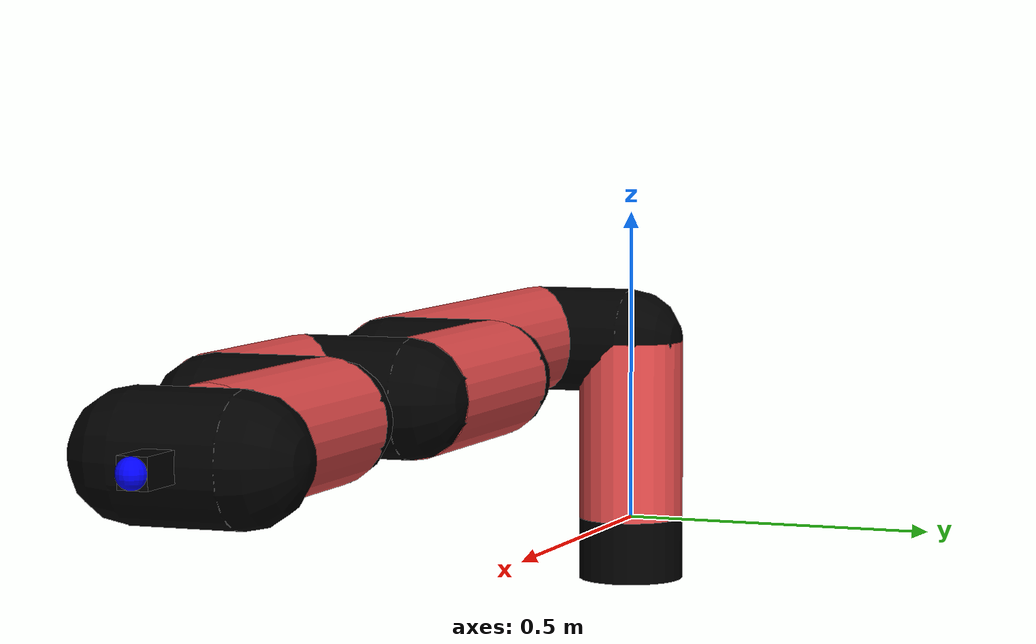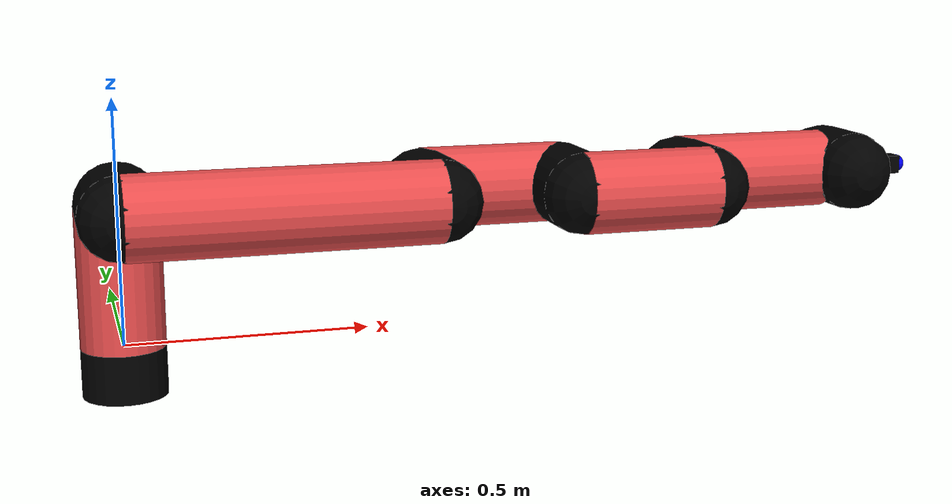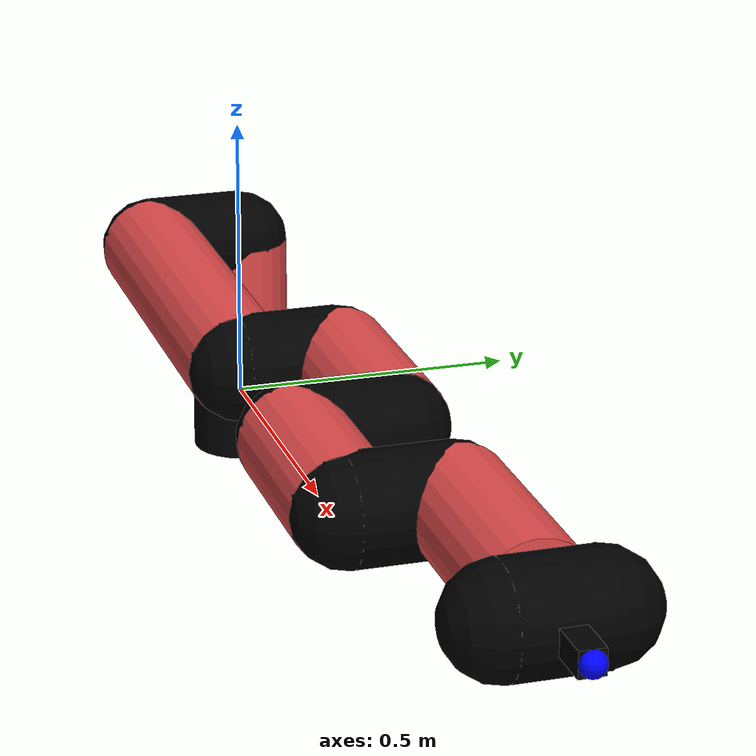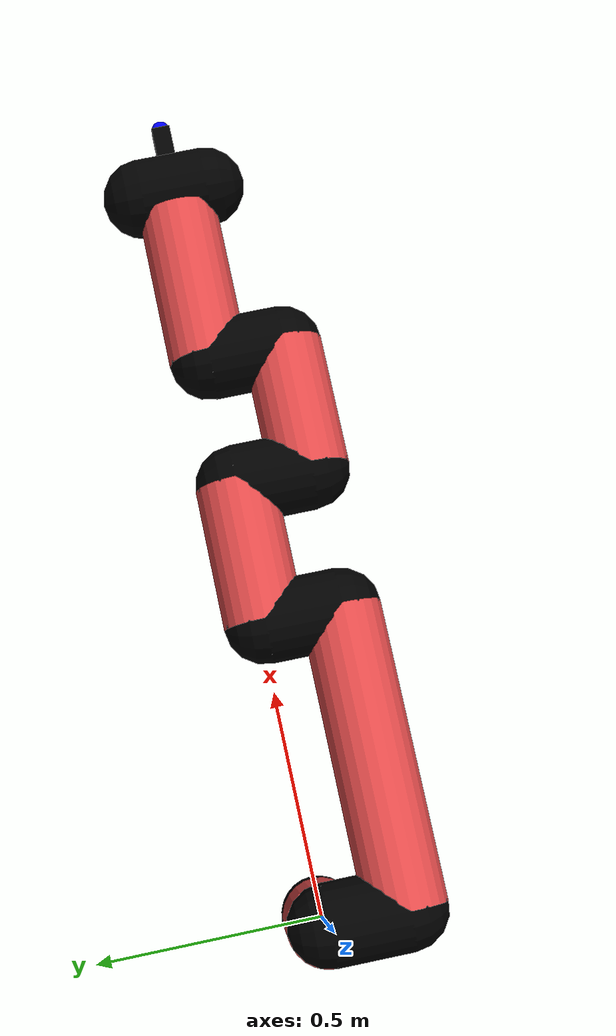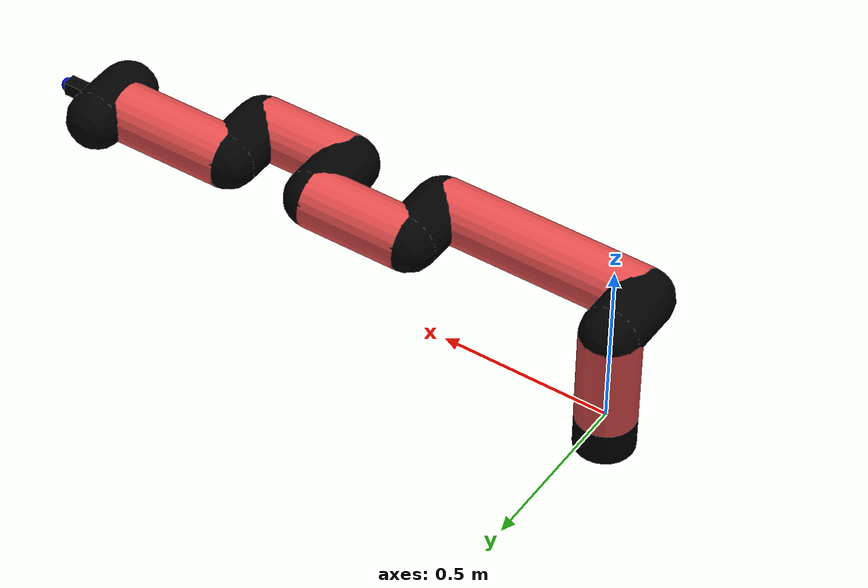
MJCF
<mujoco model="manipulator">
		<compiler angle="degree" coordinate="local" inertiafromgeom="auto" meshdir="meshes/"/>
		<option gravity="0 0 0" integrator="RK4" iterations="30" timestep="0.01"/>

		<default>
		<joint armature="1" limited="true" stiffness="10" damping="15" frictionloss="5.0"/>
		<geom conaffinity="1" condim="3" contype="1" friction=".5 .1 .1" margin="0.002"/>
		<motor ctrllimited="true"/>
		<position ctrllimited="true"/>
		</default>

		<asset>
		<texture builtin="gradient" height="100" rgb1="1.0 1.0 1.0" rgb2="1.0 1.0 1.0" type="skybox" width="100"/>
		<texture builtin="flat" height="32" name="arm_tex" rgb1="0.9 0.3 0.3" type="2d" width="32"/>
		<texture builtin="flat" height="32" name="gripper_tex" rgb1="0.0 0.0 0.0" type="cube" width="32"/>

		<material name="arm_mat" shininess="0.1" specular="0.1" texture="arm_tex"/>
		<material name="gripper_mat" shininess="1" specular="1" texture="gripper_tex"/>
		</asset>

		<worldbody>
		<light cutoff="45" diffuse=".8 .8 .8" dir="0 0.16 -1" directional="false" name="light" pos="0 -2.0 8.0" specular="0.3 0.3 0.3"/>

		<body name="base_link" pos="0 0 -0.1">
		<geom fromto="0 0 0 0 0 0.1" material="arm_mat" name="base_link" rgba="0.0 0.0 0.0 1" size="0.085" type="cylinder"/>
		</body>

		<body name="l1" pos="0 0 0">
<geom fromto="0 0 0 0 0 0.29" material="arm_mat" name="l1" rgba="0.9 0.3 0.3 1" size="0.085" type="cylinder"/>
<geom fromto="0 0 0.29 0 -0.16 0.29" material="arm_mat" name="l1_ex" rgba="0.0 0.0 0.0 1" size="0.085" type="capsule"/>
<joint axis="0 0 1" name="j1" pos="0 0 0" range="-90 90" damping="24.7" frictionloss="8.35"/>

<body name="l2" pos="0 -0.16 0.29">
<geom fromto="0 0 0 0.62 0 0" material="arm_mat" name="l2" rgba="0.9 0.3 0.3 1" size="0.085" type="cylinder"/>
<geom fromto="0.62 0 0 0.62 0.16 0" material="arm_mat" name="l2_ex" rgba="0.0 0.0 0.0 1" size="0.085" type="capsule"/>
<joint axis="0.0 1.0 0.0" name="j2" pos="0 0 0" range="-90 60" damping="36.22" frictionloss="12.0"/>

<body name="l3" pos="0.62 0.16 0">
<geom fromto="0 0 0 0.3 0 0" material="arm_mat" name="l3" rgba="0.9 0.3 0.3 1" size="0.085" type="cylinder"/>
<geom fromto="0.3 0 0 0.3 -0.16 0" material="arm_mat" name="l3_ex" rgba="0.0 0.0 0.0 1" size="0.085" type="capsule"/>
<joint axis="0.0 1.0 0.0" name="j3" pos="0 0 0" range="-30 60" damping="32.14" frictionloss="10.53"/>

<body name="l4" pos="0.3 -0.16 0">
<geom fromto="0 0 0 0.28 0 0" material="arm_mat" name="l4" rgba="0.9 0.3 0.3 1" size="0.085" type="cylinder"/>
<geom fromto="0.28 0 0 0.28 0.16 0" material="arm_mat" name="l4_ex" rgba="0.0 0.0 0.0 1" size="0.085" type="capsule"/>
<joint axis="0.0 1.0 0.0" name="j4" pos="0 0 0" range="-30 60" damping="28.38" frictionloss="11.15"/>

<body name="l5" pos="0.28 0.16 0">
<geom fromto="0 0 0 0.34 0 0" material="arm_mat" name="l5" rgba="0.9 0.3 0.3 1" size="0.085" type="cylinder"/>
<joint axis="0.0 1.0 0.0" name="j5" pos="0 0 0" range="-30 60" damping="24.89" frictionloss="10.67"/>

<body name="gripper" pos="0.34 0 0">
<geom fromto="0.05 -0.07 0 0.05 0.07 0" material="gripper_mat" name="gripper" rgba="0.0 0.0 0.0 1" size="0.085" type="capsule"/><joint axis="1 0 0" name="j6" pos="0 0 0" range="-90 90" damping="15" frictionloss="5.0"/><body name="finger" pos="0.1 0 0">
<geom fromto="0 0.0 0 0.1 0.0 0" material="gripper_mat" name="finger" rgba="0.0 0.0 0.0 1" size="0.020 0.06 0.06" type="box"/>
</body>
<site name="current" pos="0.2 0. 0.0" rgba="0. 0. 1.0 1" size="0.02" type="sphere"/>
</body>
</body>
</body>
</body>
</body>
</body>
</worldbody>
<actuator>
<motor ctrllimited="true" ctrlrange="-1.0 1.0" joint="j1" gear="75.72"/>
<motor ctrllimited="true" ctrlrange="-1.0 1.0" joint="j2" gear="86.53"/>
<motor ctrllimited="true" ctrlrange="-1.0 1.0" joint="j3" gear="98.19"/>
<motor ctrllimited="true" ctrlrange="-1.0 1.0" joint="j4" gear="92.15"/>
<motor ctrllimited="true" ctrlrange="-1.0 1.0" joint="j5" gear="70.75"/>
<motor ctrllimited="true" ctrlrange="-1.0 1.0" joint="j6" gear="80"/>
</actuator>
</mujoco>
